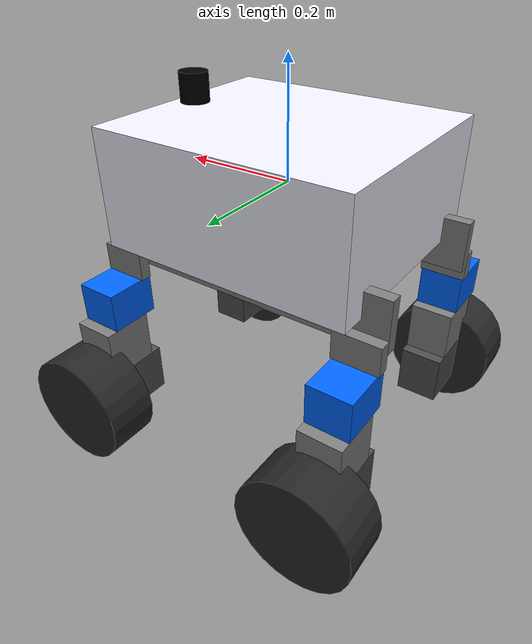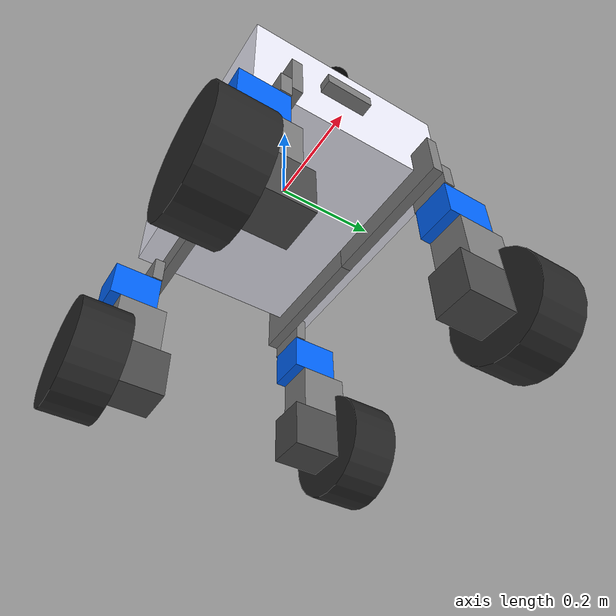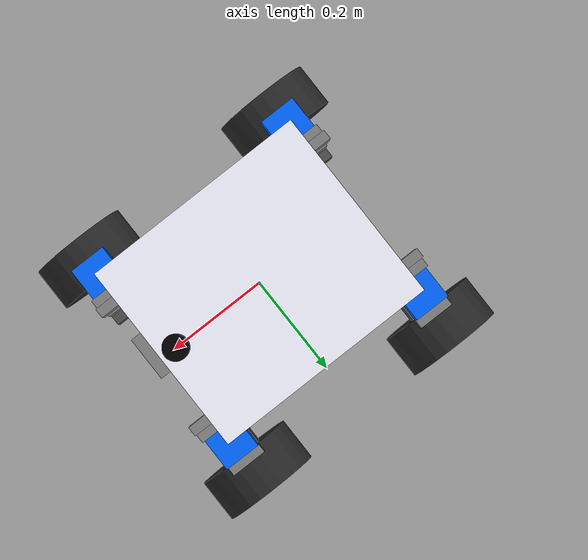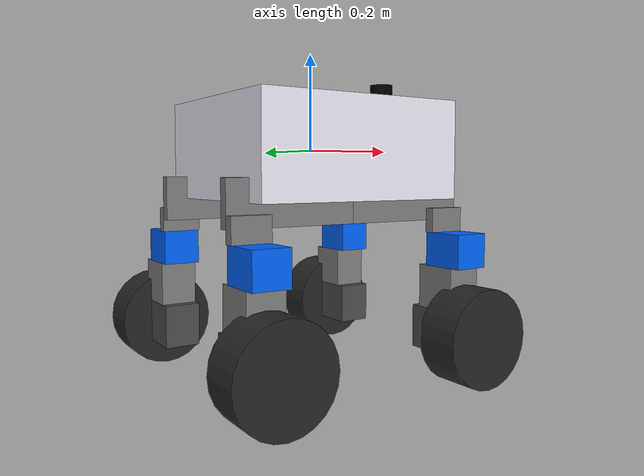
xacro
<?xml version="1.0"?>
<robot name="pf1" xmlns:xacro="http://ros.org/wiki/xacro">

    <!-- define color-->
  <material name="base_link">
    <color rgba="0.95 0.95 1.0 1.0"/>
  </material>
  <material name="lidar">
    <color rgba="0.0 0.0 0.0 1.0"/>
  </material>
  <material name="camera_aluminum">
    <color rgba="0.5 0.5 0.5 1.0"/>
  </material>
  <material name="frame">
    <color rgba="0.5 0.5 0.5 1.0"/>
  </material>
  <material name="gear">
    <color rgba="0.0 0.4 1.0 1.0"/>
  </material>
  <material name="motor">
    <color rgba="0.3 0.3 0.3 1.0"/>
  </material>
  <material name="wheel">
    <color rgba="0.15 0.15 0.15 1.0"/>
  </material>

    <!-- base_footprint-->

    <!-- base_link -->
  <link name="base_link">
    <inertial>
      <origin xyz="0 0 0" rpy="0 0 0"/>
      <mass value="50.0"/>
      <inertia ixx="1.0" ixy="0.0" ixz="0.0" iyy="1.0" iyz="0.0" izz="1.0"/>
    </inertial>
    <visual>
      <geometry>
        <box size="0.45 0.39 0.2"/>
      </geometry>
      <origin xyz="0 0 0" rpy="0 0 0"/>
      <material name="base_link"/>
    </visual>
    <collision>
      <geometry>
        <box size="0.45 0.39 0.2"/>
      </geometry>
      <origin xyz="0 0 0" rpy="0 0 0"/>
      <material name="base_link"/>
    </collision>
  </link>
  <gazebo reference="body_link">
    <material>Gazebo/White</material>
  </gazebo>

    <!-- imu_link -->
  <joint name="imu_link_to_base_link" type="fixed">
    <parent link="base_link"/>
    <child link="imu_link"/>
    <origin xyz="-0 0 0" rpy="0 0 0"/>
  </joint>
  <link name="imu_link">
    <visual>
      <origin xyz="0 0 0.0" rpy="0 0 0"/>
      <geometry>
        <cylinder length="0.01" radius="0.005"/>
      </geometry>
      <material name="lidar"/>
    </visual>
    <collision>
      <origin xyz="0 0 0.0" rpy="0 0 0"/>
      <geometry>
        <cylinder length="0.01" radius="0.005"/>
      </geometry>
      <material name="lidar"/>
    </collision>
  </link>
  <gazebo reference="imu_link">
    <material>Gazebo/Blue</material>
    <gravity>true</gravity>
    <sensor name="imu_sensor" type="imu">
      <always_on>true</always_on>
      <update_rate>100</update_rate>
      <visualize>true</visualize>
      <topic>data</topic>
      <plugin filename="libgazebo_ros_imu_sensor.so" name="imu_plugin">
        <topicName>imu/data</topicName>
        <bodyName>imu_link</bodyName>
        <updateRateHZ>10.0</updateRateHZ>
        <gaussianNoise>0.0</gaussianNoise>
        <xyzOffset>0 0 0</xyzOffset>
        <rpyOffset>0 0 0</rpyOffset>
        <frameName>imu_link</frameName>
      </plugin>
      <pose>0 0 0 0 0 0</pose>
    </sensor>
  </gazebo>

    <!-- base_sensor -->
  <joint name="base_link_to_base_sensor" type="fixed">
    <parent link="base_link"/>
    <child link="base_sensor"/>
    <origin xyz="-0 0 0" rpy="0 0 0"/>
  </joint>
  <link name="base_sensor">
    <visual>
      <origin xyz="0 0 0.0" rpy="0 0 0"/>
      <geometry>
        <cylinder length="0.01" radius="0.005"/>
      </geometry>
      <material name="lidar"/>
    </visual>
    <collision>
      <origin xyz="0 0 0.0" rpy="0 0 0"/>
      <geometry>
        <cylinder length="0.01" radius="0.005"/>
      </geometry>
      <material name="lidar"/>
    </collision>
  </link>
  <gazebo reference="base_link_to_base_sensor">
    <material>Gazebo/Grey</material>
  </gazebo>

    <!-- realsense -->

  <!-- set property -->
   <xacro:property name="M_PI" value="3.1415926535897931" />
   <xacro:property name="d435_cam_width" value="0.090"/>
   <xacro:property name="d435_cam_height" value="0.025"/>
   <xacro:property name="d435_cam_depth" value="0.02505"/>
   <xacro:property name="d435_cam_mount_from_center_offset" value="0.0149"/>
   <xacro:property name="d435_cam_depth_px" value="${d435_cam_mount_from_center_offset}"/>
   <xacro:property name="d435_cam_depth_py" value="0.0175"/>
   <xacro:property name="d435_cam_depth_pz" value="${d435_cam_height/2}"/>
   <xacro:property name="deg_to_rad" value="0.01745329251994329577" />

  <!-- camera body, with origin at bottom screw mount -->

    <joint name="camera_joint" type="fixed">
      <origin xyz="0.225 0 0" rpy="0 0 0" />
      <parent link="base_sensor" />
      <child link="camera_bottom_screw_frame" />
    </joint>

    <link name="camera_bottom_screw_frame"/>

    <joint name="camera_link_joint" type="fixed">
      <origin xyz="0.0125 0 0" rpy="0 0 0"/>
      <parent link="camera_bottom_screw_frame"/>
      <child link="camera_link" />
    </joint>

    <link name="camera_link">
      <visual>
        <origin xyz="0 ${-d435_cam_depth_py} 0" rpy="${M_PI/2} 0 ${M_PI/2}"/>
        <geometry>
          <box size="${d435_cam_width} ${d435_cam_height} ${d435_cam_depth}" />
        </geometry>
        <material name="camera_aluminum"/>
      </visual>
      <collision>
        <origin xyz="0 ${-d435_cam_depth_py} 0" rpy="0 0 0"/>
        <geometry>
          <box size="${d435_cam_depth} ${d435_cam_width} ${d435_cam_height}"/>
        </geometry>
      </collision>
      <inertial>
        <mass value="0.564" />
        <origin xyz="0 0 0" />
        <inertia ixx="0.003881243" ixy="0.0" ixz="0.0" iyy="0.000498940" iyz="0.0" izz="0.003879257" />
      </inertial>
    </link>
    <gazebo reference="camera_link">
      <material>Gazebo/Black</material>
      <self_collide>0</self_collide>
      <enable_wind>0</enable_wind>
      <kinematic>0</kinematic>
      <gravity>1</gravity>
      <mu2>1</mu2>
      <fdir1>0 0 0</fdir1>
      <kp>1e+13</kp>
      <kd>1</kd>
      <sensor name="cameracolor" type="camera">
        <camera name="camera">
          <horizontal_fov>${69.4*deg_to_rad}</horizontal_fov>
          <image>
            <width>640</width>
            <height>480</height>
            <format>RGB_INT8</format>
          </image>
          <clip>
            <near>0.1</near>
            <far>100</far>
          </clip>
          <noise>
            <type>gaussian</type>
            <mean>0.0</mean>
            <stddev>0.007</stddev>
          </noise>
        </camera>
        <always_on>1</always_on>
        <update_rate>30</update_rate>
        <visualize>1</visualize>
      </sensor>

      <sensor name="cameraired1" type="camera">
        <camera name="camera">
          <horizontal_fov>${85.2*deg_to_rad}</horizontal_fov>
          <image>
            <width>1280</width>
            <height>720</height>
            <format>L_INT8</format>
          </image>
          <clip>
            <near>0.1</near>
            <far>100</far>
          </clip>
          <noise>
            <type>gaussian</type>
            <mean>0.0</mean>
            <stddev>0.05</stddev>
          </noise>
        </camera>
        <always_on>1</always_on>
        <update_rate>90</update_rate>
        <visualize>0</visualize>
      </sensor>

      <sensor name="cameraired2" type="camera">
        <camera name="camera">
          <horizontal_fov>${85.2*deg_to_rad}</horizontal_fov>
          <image>
            <width>1280</width>
            <height>720</height>
            <format>L_INT8</format>
          </image>
          <clip>
            <near>0.1</near>
            <far>100</far>
          </clip>
          <noise>
            <type>gaussian</type>
            <mean>0.0</mean>
            <stddev>0.05</stddev>
          </noise>
        </camera>
        <always_on>1</always_on>
        <update_rate>90</update_rate>
        <visualize>0</visualize>
      </sensor>

      <sensor name="cameradepth" type="depth">
        <camera name="camera">
          <horizontal_fov>${85.2*deg_to_rad}</horizontal_fov>
          <image>
            <width>1280</width>
            <height>720</height>
          </image>
          <clip>
            <near>0.1</near>
            <far>100</far>
          </clip>
          <noise>
            <type>gaussian</type>
            <mean>0.0</mean>
            <stddev>0.100</stddev>
          </noise>
        </camera>
        <always_on>1</always_on>
        <update_rate>90</update_rate>
        <visualize>0</visualize>
      </sensor>
    </gazebo>
      <gazebo>
      <plugin name="camera" filename="librealsense_gazebo_plugin.so">
        <prefix>camera</prefix>
        <depthUpdateRate>30.0</depthUpdateRate>
        <colorUpdateRate>30.0</colorUpdateRate>
        <infraredUpdateRate>30.0</infraredUpdateRate>
        <depthTopicName>depth/image_raw</depthTopicName>
        <depthCameraInfoTopicName>depth/camera_info</depthCameraInfoTopicName>
        <colorTopicName>color/image_raw</colorTopicName>
        <colorCameraInfoTopicName>color/camera_info</colorCameraInfoTopicName>
        <infrared1TopicName>infra1/image_raw</infrared1TopicName>
        <infrared1CameraInfoTopicName>infra1/camera_info</infrared1CameraInfoTopicName>
        <infrared2TopicName>infra2/image_raw</infrared2TopicName>
        <infrared2CameraInfoTopicName>infra2/camera_info</infrared2CameraInfoTopicName>
        <colorOpticalframeName>color_optical_frame</colorOpticalframeName>
        <depthOpticalframeName>depth_optical_frame</depthOpticalframeName>
        <infrared1OpticalframeName>infrared1_optical_frame</infrared1OpticalframeName>
        <infrared2OpticalframeName>infrared2_optical_frame</infrared2OpticalframeName>
        <rangeMinDepth>0.2</rangeMinDepth>
        <rangeMaxDepth>10.0</rangeMaxDepth>
        <pointCloud>true</pointCloud>
        <pointCloudTopicName>depth/color/points</pointCloudTopicName>
        <pointCloudCutoff>0.25</pointCloudCutoff>
        <pointCloudCutoffMax>9.0</pointCloudCutoffMax>
      </plugin>
    </gazebo>

    <!-- camera depth joints and links -->
    <joint name="camera_depth_joint" type="fixed">
      <origin xyz="0 0 0" rpy="0 0 0"/>
      <parent link="camera_link"/>
      <child link="camera_depth_frame" />
    </joint>

    <link name="camera_depth_frame"/>

    <joint name="camera_depth_optical_joint" type="fixed">
      <origin xyz="0 0 0" rpy="${-M_PI/2} 0 ${-M_PI/2}" />
      <parent link="camera_depth_frame" />
      <child link="camera_depth_optical_frame" />
    </joint>

    <link name="camera_depth_optical_frame"/>

    <!-- camera left IR joints and links -->
    <joint name="camera_left_ir_joint" type="fixed">
      <origin xyz="0 0 0" rpy="0 0 0" />
      <parent link="camera_depth_frame" />
      <child link="camera_left_ir_frame" />
    </joint>

    <link name="camera_left_ir_frame"/>

    <joint name="camera_left_ir_optical_joint" type="fixed">
      <origin xyz="0 0 0" rpy="${-M_PI/2} 0 ${-M_PI/2}" />
      <parent link="camera_left_ir_frame" />
      <child link="camera_left_ir_optical_frame" />
    </joint>

    <link name="camera_left_ir_optical_frame"/>

    <!-- camera right IR joints and links -->
    <joint name="camera_right_ir_joint" type="fixed">
      <origin xyz="0 -0.050 0" rpy="0 0 0" />
      <parent link="camera_depth_frame" />
      <child link="camera_right_ir_frame" />
    </joint>

    <link name="camera_right_ir_frame"/>

    <joint name="camera_right_ir_optical_joint" type="fixed">
      <origin xyz="0 0 0" rpy="${-M_PI/2} 0 ${-M_PI/2}" />
      <parent link="camera_right_ir_frame" />
      <child link="camera_right_ir_optical_frame" />
    </joint>

    <link name="camera_right_ir_optical_frame"/>

    <!-- camera color joints and links -->
    <joint name="camera_color_joint" type="fixed">
      <origin xyz="0 0.015 0" rpy="0 0 0" />
      <parent link="camera_depth_frame" />
      <child link="camera_color_frame" />
    </joint>

    <link name="camera_color_frame"/>

    <joint name="camera_color_optical_joint" type="fixed">
      <origin xyz="0 0 0" rpy="${-M_PI/2} 0 ${-M_PI/2}" />
      <parent link="camera_color_frame" />
      <child link="camera_color_optical_frame" />
    </joint>

    <link name="camera_color_optical_frame"/>

    <!--end of realsense setup-->

    <!-- front_lidar -->
  <joint name="front_lidar_to_base_sensor" type="fixed">
    <parent link="base_sensor"/>
    <child link="front_lidar"/>
    <!-- side type (piezo) -->
    <!-- front  type (k-lab) -->
    <origin xyz="0.190 0 0.125" rpy="0 0 0"/>
  </joint>
  <link name="front_lidar">
    <visual>
      <origin xyz="0 0 0.0" rpy="0 0 0"/>
      <geometry>
        <cylinder length="0.05" radius="0.025"/>
      </geometry>
      <material name="lidar"/>
    </visual>
    <collision>
      <origin xyz="0 0 0.0" rpy="0 0 0"/>
      <geometry>
        <cylinder length="0.05" radius="0.025"/>
      </geometry>
      <material name="lidar"/>
    </collision>
  </link>
  <gazebo reference="front_lidar">
    <material>Gazebo/Grey</material>
    <sensor type="ray" name="$front_lidar_sensor">
      <pose>0 0 0 0 0 0</pose>
      <visualize>true</visualize>
      <update_rate>10</update_rate>
      <ray>
        <scan>
          <horizontal>
            <samples>400</samples>
            <resolution>1</resolution>
            <min_angle>${radians(-90)}</min_angle>
            <max_angle>${radians(90)}</max_angle>
          </horizontal>
        </scan>
        <range>
          <min>0.10</min>
          <max>20.0</max>
          <resolution>0.01</resolution>
        </range>
        <noise>
          <type>gaussian</type>
          <mean>0.0</mean>
          <stddev>0.01</stddev>
        </noise>
      </ray>
      <plugin name="gazebo_ros_lidar_controller" filename="libgazebo_ros_laser.so">
        <topicName>scan</topicName>
        <frameName>front_lidar</frameName>
      </plugin>
    </sensor>
  </gazebo>

    <!-- rear_lidar -->

    <!-- leg_fl -->
  <joint name="frame1_fl_to_base_link" type="fixed">
    <parent link="base_link"/>
    <child  link="frame1_fl"/>
    <origin xyz="0 0.14 -0.1" rpy="0 0 0"/>
  </joint>
  <link name="frame1_fl">
    <visual>
      <geometry>
        <box size="0.27 0.02 0.09"/>
      </geometry>
      <origin xyz="0.135 0 0" rpy="0 0 0"/>
      <material name="frame"/>
    </visual>
    <collision>
      <geometry>
        <box size="0.27 0.02 0.09"/>
      </geometry>
      <origin xyz="0.135 0 0" rpy="0 0 0"/>
      <material name="frame"/>
    </collision>
  </link>
  <gazebo reference="frame1_fl">
    <material>Gazebo/Grey</material>
  </gazebo>

  <joint name="frame2_fl_to_frame1_fl" type="fixed">
    <parent link="frame1_fl"/>
    <child  link="frame2_fl"/>
    <origin xyz="0.23 0.02 -0.045" rpy="0 0 0"/>
  </joint>
  <link name="frame2_fl">
    <visual>
      <geometry>
        <box size="0.08 0.02 0.05"/>
      </geometry>
      <origin xyz="0 0 0" rpy="0 0 0"/>
      <material name="frame"/>
    </visual>
    <collision>
      <geometry>
        <box size="0.08 0.02 0.05"/>
      </geometry>
      <origin xyz="0 0 0" rpy="0 0 0"/>
      <material name="frame"/>
    </collision>
  </link>
  <gazebo reference="frame2_fl">
    <material>Gazebo/Grey</material>
  </gazebo>

  <joint name="gear_fl_to_frame2_fl" type="fixed">
    <parent link="frame2_fl"/>
    <child  link="gear_fl"/>
    <origin xyz="0 0.035 -0.06" rpy="0 0 0"/>
  </joint>
  <link name="gear_fl">
    <visual>
      <geometry>
        <box size="0.075 0.09 0.07"/>
      </geometry>
      <origin xyz="0 0 0" rpy="0 0 0"/>
      <material name="gear"/>
    </visual>
    <collision>
      <geometry>
        <box size="0.075 0.09 0.07"/>
      </geometry>
      <origin xyz="0 0 0" rpy="0 0 0"/>
      <material name="gear"/>
    </collision>
    <inertial>
      <origin xyz="0 0 0" rpy="0 0 0"/>
      <mass value="1.0"/>
      <inertia ixx="1.0" ixy="0.0" ixz="0.0" iyy="1.0" iyz="0.0" izz="1.0"/>
    </inertial>
  </link>
  <gazebo reference="gear_fl">
    <material>Gazebo/Blue</material>
  </gazebo>

  <joint name="frame3_fl_to_gear_fl" type="revolute">
    <parent link="gear_fl"/>
    <child  link="frame3_fl"/>
    <axis xyz="0 0 1"/>
    <origin xyz="0 0.02 -0.08" rpy="0 0 0"/>
    <limit lower="-3.1415" upper="3.1415" effort="30" velocity="10"/>
    <dybamics damping="10000.0" friction="10000.0" />
  </joint>
  <transmission name="$frame3_fl_to_gear_fl_trans">
    <type>transmission_interface/SimpleTransmission</type>
    <joint name="frame3_fl_to_gear_fl">
        <hardwareInterface>hardware_interface/VelocityJointInterface</hardwareInterface>
    </joint>
    <actuator name="frame3_fl_to_gear_fl_motor">
      <hardwareInterface>hardware_interface/VelocityJointInterface</hardwareInterface>
      <mechanismReduction>1</mechanismReduction>
    </actuator>
  </transmission>

  <gazebo reference="frame3_fl_to_gear_fl">
    <material>Gazebo/Blue</material>
  </gazebo>

  <link name="frame3_fl">
    <visual>
      <geometry>
        <box size="0.075 0.09 0.09"/>
      </geometry>
      <origin xyz="0 0 0" rpy="0 0 0"/>
      <material name="frame"/>
    </visual>
    <collision>
      <geometry>
        <box size="0.075 0.09 0.09"/>
      </geometry>
      <origin xyz="0 0 0" rpy="0 0 0"/>
      <material name="frame"/>
    </collision>
    <inertial>
      <origin xyz="0 0 0" rpy="0 0 0"/>
      <mass value="5.0"/>
      <inertia ixx="1.0" ixy="0.0" ixz="0.0" iyy="1.0" iyz="0.0" izz="1.0"/>
    </inertial>
  </link>
  <gazebo reference="frame3_fl">
    <material>Gazebo/Grey</material>
    <mu1 value="2500" />
    <mu2 value="2500" />
  </gazebo>

  <joint name="motor_fl_to_frame3_fl" type="fixed">
    <parent link="frame3_fl"/>
    <child  link="motor_fl"/>
    <origin xyz="0 -0.02 -0.09" rpy="0 0 0"/>
  </joint>
  <link name="motor_fl">
    <visual>
      <geometry>
        <box size="0.075 0.09 0.09"/>
      </geometry>
      <material name="motor"/>
    </visual>
    <collision>
      <geometry>
        <box size="0.075 0.09 0.09"/>
      </geometry>
      <material name="motor"/>
    </collision>
    <inertial>
      <origin xyz="0 0 0" rpy="0 0 0"/>
      <mass value="5.0"/>
      <inertia ixx="1.0" ixy="0.0" ixz="0.0" iyy="1.0" iyz="0.0" izz="1.0"/>
    </inertial>
  </link>
  <gazebo reference="motor_fl">
    <material>Gazebo/Grey</material>
  </gazebo>

  <joint name="wheel_fl_to_motor_fl" type="continuous">
    <parent link="motor_fl"/>
    <child  link="wheel_fl"/>
    <origin xyz="0 0.09 0" rpy="0 0 0"/>
    <axis xyz="0 1 0"/>
    <limit effort="100" velocity="100"/>
    <dynamics damping="0.1" friction="0.0"/>
  </joint>
  <transmission name="$wheel_fl_trans">
    <type>transmission_interface/SimpleTransmission</type>
    <joint name="wheel_fl_to_motor_fl">
        <hardwareInterface>hardware_interface/VelocityJointInterface</hardwareInterface>
    </joint>
    <actuator name="wheel_fl_motor">
      <hardwareInterface>hardware_interface/VelocityJointInterface</hardwareInterface>
      <mechanismReduction>1</mechanismReduction>
    </actuator>
  </transmission>

  <link name="wheel_fl">
    <visual>
      <geometry>
        <cylinder length="0.09" radius="0.1"/>
      </geometry>
      <origin xyz="0 0 0" rpy="1.57 0 0"/>
      <material name="wheel"/>
    </visual>
    <collision>
      <geometry>
        <cylinder length="0.09" radius="0.1"/>
      </geometry>
      <origin xyz="0 0 0" rpy="1.57 0 0"/>
      <material name="wheel"/>
    </collision>
    <inertial>
      <origin xyz="0 0 0" rpy="0 0 0"/>
      <mass value="10.0"/>
      <inertia ixx="1.0" ixy="0.0" ixz="0.0" iyy="1.0" iyz="0.0" izz="1.0"/>
    </inertial>
  </link>
  <gazebo reference="wheel_fl">
    <material>Gazebo/Black</material>
    <mu1 value="200.0" />
    <mu2 value="100.0" />
    <kp value="10000000.0" />
    <kd value="1.0" />
  </gazebo>

      <!-- leg_bl : mirror leg_fl to the y axis -->
  <joint name="frame1_bl_to_base_link" type="fixed">
    <parent link="base_link"/>
    <child  link="frame1_bl"/>
    <origin xyz="0 0.14 -0.1" rpy="0 0 0"/>
  </joint>
  <link name="frame1_bl">
    <visual>
      <geometry>
        <box size="0.27 0.02 0.09"/>
      </geometry>
      <origin xyz="-0.135 0 0" rpy="0 0 0"/>
      <material name="frame"/>
    </visual>
    <collision>
      <geometry>
        <box size="0.27 0.02 0.09"/>
      </geometry>
      <origin xyz="-0.135 0 0" rpy="0 0 0"/>
      <material name="frame"/>
    </collision>
  </link>
  <gazebo reference="frame1_bl">
    <material>Gazebo/Grey</material>
  </gazebo>

  <joint name="frame2_bl_to_frame1_bl" type="fixed">
    <parent link="frame1_bl"/>
    <child  link="frame2_bl"/>
    <origin xyz="-0.23 0.02 -0.045" rpy="0 0 0"/>
  </joint>
  <link name="frame2_bl">
    <visual>
      <geometry>
        <box size="0.08 0.02 0.05"/>
      </geometry>
      <origin xyz="0 0 0" rpy="0 0 0"/>
      <material name="frame"/>
    </visual>
    <collision>
      <geometry>
        <box size="0.08 0.02 0.05"/>
      </geometry>
      <origin xyz="0 0 0" rpy="0 0 0"/>
      <material name="frame"/>
    </collision>
  </link>
  <gazebo reference="frame2_bl">
    <material>Gazebo/Grey</material>
  </gazebo>

  <joint name="gear_bl_to_frame2_bl" type="fixed">
    <parent link="frame2_bl"/>
    <child  link="gear_bl"/>
    <origin xyz="0 0.035 -0.06" rpy="0 0 0"/>
  </joint>
  <link name="gear_bl">
    <visual>
      <geometry>
        <box size="0.075 0.09 0.07"/>
      </geometry>
      <origin xyz="0 0 0" rpy="0 0 0"/>
      <material name="gear"/>
    </visual>
    <collision>
      <geometry>
        <box size="0.075 0.09 0.07"/>
      </geometry>
      <origin xyz="0 0 0" rpy="0 0 0"/>
      <material name="gear"/>
    </collision>
    <inertial>
      <origin xyz="0 0 0" rpy="0 0 0"/>
      <mass value="1.0"/>
      <inertia ixx="1.0" ixy="0.0" ixz="0.0" iyy="1.0" iyz="0.0" izz="1.0"/>
    </inertial>
  </link>
  <gazebo reference="gear_bl">
    <material>Gazebo/Blue</material>
  </gazebo>

  <joint name="frame3_bl_to_gear_bl" type="revolute">
    <parent link="gear_bl"/>
    <child  link="frame3_bl"/>
    <axis xyz="0 0 1"/>
    <origin xyz="0 0.02 -0.08" rpy="0 0 0"/>
    <limit lower="-3.1415" upper="3.1415" effort="30" velocity="10"/>
    <dybamics damping="10000.0" friction="10000.0" />
  </joint>
  <transmission name="$frame3_bl_to_gear_bl_trans">
    <type>transmission_interface/SimpleTransmission</type>
    <joint name="frame3_bl_to_gear_bl">
        <hardwareInterface>hardware_interface/VelocityJointInterface</hardwareInterface>
    </joint>
    <actuator name="frame3_bl_to_gear_bl_motor">
      <hardwareInterface>hardware_interface/VelocityJointInterface</hardwareInterface>
      <mechanismReduction>1</mechanismReduction>
    </actuator>
  </transmission>

  <gazebo reference="frame3_bl_to_gear_bl">
    <material>Gazebo/Blue</material>
  </gazebo>

  <link name="frame3_bl">
    <visual>
      <geometry>
        <box size="0.075 0.09 0.09"/>
      </geometry>
      <origin xyz="0 0 0" rpy="0 0 0"/>
      <material name="frame"/>
    </visual>
    <collision>
      <geometry>
        <box size="0.075 0.09 0.09"/>
      </geometry>
      <origin xyz="0 0 0" rpy="0 0 0"/>
      <material name="frame"/>
    </collision>
    <inertial>
      <origin xyz="0 0 0" rpy="0 0 0"/>
      <mass value="5.0"/>
      <inertia ixx="1.0" ixy="0.0" ixz="0.0" iyy="1.0" iyz="0.0" izz="1.0"/>
    </inertial>
  </link>
  <gazebo reference="frame3_bl">
    <material>Gazebo/Grey</material>
    <mu1 value="2500" />
    <mu2 value="2500" />
  </gazebo>

  <joint name="motor_bl_to_frame3_bl" type="fixed">
    <parent link="frame3_bl"/>
    <child  link="motor_bl"/>
    <origin xyz="0 -0.02 -0.09" rpy="0 0 0"/>
  </joint>
  <link name="motor_bl">
    <visual>
      <geometry>
        <box size="0.075 0.09 0.09"/>
      </geometry>
      <material name="motor"/>
    </visual>
    <collision>
      <geometry>
        <box size="0.075 0.09 0.09"/>
      </geometry>
      <material name="motor"/>
    </collision>
    <inertial>
      <origin xyz="0 0 0" rpy="0 0 0"/>
      <mass value="5.0"/>
      <inertia ixx="1.0" ixy="0.0" ixz="0.0" iyy="1.0" iyz="0.0" izz="1.0"/>
    </inertial>
  </link>
  <gazebo reference="motor_bl">
    <material>Gazebo/Grey</material>
  </gazebo>

  <joint name="wheel_bl_to_motor_bl" type="continuous">
    <parent link="motor_bl"/>
    <child  link="wheel_bl"/>
    <origin xyz="0 0.09 0" rpy="0 0 0"/>
    <axis xyz="0 1 0"/>
    <limit effort="100" velocity="100"/>
    <dynamics damping="0.1" friction="0.0"/>
  </joint>
  <transmission name="$wheel_bl_trans">
    <type>transmission_interface/SimpleTransmission</type>
    <joint name="wheel_bl_to_motor_bl">
        <hardwareInterface>hardware_interface/VelocityJointInterface</hardwareInterface>
    </joint>
    <actuator name="wheel_bl_motor">
      <hardwareInterface>hardware_interface/VelocityJointInterface</hardwareInterface>
      <mechanismReduction>1</mechanismReduction>
    </actuator>
  </transmission>

  <link name="wheel_bl">
    <visual>
      <geometry>
        <cylinder length="0.09" radius="0.1"/>
      </geometry>
      <origin xyz="0 0 0" rpy="1.57 0 0"/>
      <material name="wheel"/>
    </visual>>
    <collision>
      <geometry>
        <cylinder length="0.09" radius="0.1"/>
      </geometry>
      <origin xyz="0 0 0" rpy="1.57 0 0"/>
      <material name="wheel"/>
    </collision>
    <inertial>
      <origin xyz="0 0 0" rpy="0 0 0"/>
      <mass value="10.0"/>
      <inertia ixx="1.0" ixy="0.0" ixz="0.0" iyy="1.0" iyz="0.0" izz="1.0"/>
    </inertial>
  </link>
  <gazebo reference="wheel_bl">
    <material>Gazebo/Black</material>
    <mu1 value="200.0" />
    <mu2 value="100.0" />
    <kp value="10000000.0" />
    <kd value="1.0" />
  </gazebo>

    <!-- leg_fr -->
  <joint name="frame1_fr_to_base_link" type="fixed">
    <parent link="base_link"/>
    <child  link="frame1_fr"/>
    <origin xyz="0 -0.14 -0.1" rpy="0 0 0"/>
  </joint>
  <link name="frame1_fr">
    <visual>
      <geometry>
        <box size="0.27 0.02 0.09"/>
      </geometry>
      <origin xyz="0.135 0 0" rpy="0 0 0"/>
      <material name="frame"/>
    </visual>
    <collision>
      <geometry>
        <box size="0.27 0.02 0.09"/>
      </geometry>
      <origin xyz="0.135 0 0" rpy="0 0 0"/>
      <material name="frame"/>
    </collision>
  </link>
  <gazebo reference="frame1_fr">
    <material>Gazebo/Grey</material>
  </gazebo>

  <joint name="frame2_fr_to_frame1_fr" type="fixed">
    <parent link="frame1_fr"/>
    <child  link="frame2_fr"/>
    <origin xyz="0.23 -0.02 -0.045" rpy="0 0 0"/>
  </joint>
  <link name="frame2_fr">
    <visual>
      <geometry>
        <box size="0.08 0.02 0.05"/>
      </geometry>
      <origin xyz="0 0 0" rpy="0 0 0"/>
      <material name="frame"/>
    </visual>
    <collision>
      <geometry>
        <box size="0.08 0.02 0.05"/>
      </geometry>
      <origin xyz="0 0 0" rpy="0 0 0"/>
      <material name="frame"/>
    </collision>
  </link>
  <gazebo reference="frame2_fr">
    <material>Gazebo/Grey</material>
  </gazebo>

  <joint name="gear_fr_to_frame2_fr" type="fixed">
    <parent link="frame2_fr"/>
    <child  link="gear_fr"/>
    <origin xyz="0 -0.035 -0.06" rpy="0 0 0"/>
  </joint>
  <link name="gear_fr">
    <visual>
      <geometry>
        <box size="0.075 0.09 0.07"/>
      </geometry>
      <origin xyz="0 0 0" rpy="0 0 0"/>
      <material name="gear"/>
    </visual>
    <collision>
      <geometry>
        <box size="0.075 0.09 0.07"/>
      </geometry>
      <origin xyz="0 0 0" rpy="0 0 0"/>
      <material name="gear"/>
    </collision>
    <inertial>
      <origin xyz="0 0 0" rpy="0 0 0"/>
      <mass value="1.0"/>
      <inertia ixx="1.0" ixy="0.0" ixz="0.0" iyy="1.0" iyz="0.0" izz="1.0"/>
    </inertial>
  </link>
  <gazebo reference="gear_fr">
    <material>Gazebo/Blue</material>
  </gazebo>

  <joint name="frame3_fr_to_gear_fr" type="revolute">
    <parent link="gear_fr"/>
    <child  link="frame3_fr"/>
    <axis xyz="0 0 1"/>
    <origin xyz="0 0.02 -0.08" rpy="0 0 0"/>
    <limit lower="-3.1415" upper="3.1415" effort="30" velocity="10"/>
    <dybamics damping="10000.0" friction="10000.0" />
  </joint>
  <transmission name="$frame3_fr_to_gear_fr_trans">
    <type>transmission_interface/SimpleTransmission</type>
    <joint name="frame3_fr_to_gear_fr">
        <hardwareInterface>hardware_interface/VelocityJointInterface</hardwareInterface>
    </joint>
    <actuator name="frame3_fr_to_gear_fr_motor">
      <hardwareInterface>hardware_interface/VelocityJointInterface</hardwareInterface>
      <mechanismReduction>1</mechanismReduction>
    </actuator>
  </transmission>

  <gazebo reference="frame3_fr_to_gear_fr">
    <material>Gazebo/Blue</material>
  </gazebo>

  <link name="frame3_fr">
    <visual>
      <geometry>
        <box size="0.075 0.09 0.09"/>
      </geometry>
      <origin xyz="0 0 0" rpy="0 0 0"/>
      <material name="frame"/>
    </visual>
    <collision>
      <geometry>
        <box size="0.075 0.09 0.09"/>
      </geometry>
      <origin xyz="0 0 0" rpy="0 0 0"/>
      <material name="frame"/>
    </collision>
    <inertial>
      <origin xyz="0 0 0" rpy="0 0 0"/>
      <mass value="5.0"/>
      <inertia ixx="1.0" ixy="0.0" ixz="0.0" iyy="1.0" iyz="0.0" izz="1.0"/>
    </inertial>
  </link>
  <gazebo reference="frame3_fr">
    <material>Gazebo/Grey</material>
    <mu1 value="2500" />
    <mu2 value="2500" />
  </gazebo>

  <joint name="motor_fr_to_frame3_fr" type="fixed">
    <parent link="frame3_fr"/>
    <child  link="motor_fr"/>
    <origin xyz="0 0.02 -0.09" rpy="0 0 0"/>
  </joint>
  <link name="motor_fr">
    <visual>
      <geometry>
        <box size="0.075 0.09 0.09"/>
      </geometry>
      <material name="motor"/>
    </visual>
    <collision>
      <geometry>
        <box size="0.075 0.09 0.09"/>
      </geometry>
      <material name="motor"/>
    </collision>
    <inertial>
      <origin xyz="0 0 0" rpy="0 0 0"/>
      <mass value="5.0"/>
      <inertia ixx="1.0" ixy="0.0" ixz="0.0" iyy="1.0" iyz="0.0" izz="1.0"/>
    </inertial>
  </link>
  <gazebo reference="motor_fr">
    <material>Gazebo/Grey</material>
  </gazebo>

  <joint name="wheel_fr_to_motor_fr" type="continuous">
    <parent link="motor_fr"/>
    <child  link="wheel_fr"/>
    <origin xyz="0 -0.09 0" rpy="0 0 0"/>
    <axis xyz="0 1 0"/>
    <limit effort="100" velocity="100"/>
    <dynamics damping="0.1" friction="0.0"/>
  </joint>
  <transmission name="$wheel_fr_trans">
    <type>transmission_interface/SimpleTransmission</type>
    <joint name="wheel_fr_to_motor_fr">
        <hardwareInterface>hardware_interface/VelocityJointInterface</hardwareInterface>
    </joint>
    <actuator name="wheel_fr_motor">
      <hardwareInterface>hardware_interface/VelocityJointInterface</hardwareInterface>
      <mechanismReduction>1</mechanismReduction>
    </actuator>
  </transmission>

  <link name="wheel_fr">
    <visual>
      <geometry>
        <cylinder length="0.09" radius="0.1"/>
      </geometry>
      <origin xyz="0 0 0" rpy="1.57 0 0"/>
      <material name="wheel"/>
    </visual>
    <collision>
      <geometry>
        <cylinder length="0.09" radius="0.1"/>
      </geometry>
      <origin xyz="0 0 0" rpy="1.57 0 0"/>
      <material name="wheel"/>
    </collision>
    <inertial>
      <origin xyz="0 0 0" rpy="0 0 0"/>
      <mass value="10.0"/>
      <inertia ixx="1.0" ixy="0.0" ixz="0.0" iyy="1.0" iyz="0.0" izz="1.0"/>
    </inertial>
  </link>
  <gazebo reference="wheel_fr">
    <material>Gazebo/Black</material>
    <mu1 value="200.0" />
    <mu2 value="100.0" />
    <kp value="10000000.0" />
    <kd value="1.0" />
  </gazebo>

    <!-- leg_br -->
  <joint name="frame1_br_to_base_link" type="fixed">
    <parent link="base_link"/>
    <child  link="frame1_br"/>
    <origin xyz="0 -0.14 -0.1" rpy="0 0 0"/>
  </joint>
  <link name="frame1_br">
    <visual>
      <geometry>
        <box size="0.27 0.02 0.09"/>
      </geometry>
      <origin xyz="-0.135 0 0" rpy="0 0 0"/>
      <material name="frame"/>
    </visual>
    <collision>
      <geometry>
        <box size="0.27 0.02 0.09"/>
      </geometry>
      <origin xyz="-0.135 0 0" rpy="0 0 0"/>
      <material name="frame"/>
    </collision>
  </link>
  <gazebo reference="frame1_br">
    <material>Gazebo/Grey</material>
  </gazebo>

  <joint name="frame2_br_to_frame1_br" type="fixed">
    <parent link="frame1_br"/>
    <child  link="frame2_br"/>
    <origin xyz="-0.23 -0.02 -0.045" rpy="0 0 0"/>
  </joint>
  <link name="frame2_br">
    <visual>
      <geometry>
        <box size="0.08 0.02 0.05"/>
      </geometry>
      <origin xyz="0 0 0" rpy="0 0 0"/>
      <material name="frame"/>
    </visual>
    <collision>
      <geometry>
        <box size="0.08 0.02 0.05"/>
      </geometry>
      <origin xyz="0 0 0" rpy="0 0 0"/>
      <material name="frame"/>
    </collision>
  </link>
  <gazebo reference="frame2_br">
    <material>Gazebo/Grey</material>
  </gazebo>

  <joint name="gear_br_to_frame2_br" type="fixed">
    <parent link="frame2_br"/>
    <child  link="gear_br"/>
    <origin xyz="0 -0.035 -0.06" rpy="0 0 0"/>
  </joint>
  <link name="gear_br">
    <visual>
      <geometry>
        <box size="0.075 0.09 0.07"/>
      </geometry>
      <origin xyz="0 0 0" rpy="0 0 0"/>
      <material name="gear"/>
    </visual>
    <collision>
      <geometry>
        <box size="0.075 0.09 0.07"/>
      </geometry>
      <origin xyz="0 0 0" rpy="0 0 0"/>
      <material name="gear"/>
    </collision>
    <inertial>
      <origin xyz="0 0 0" rpy="0 0 0"/>
      <mass value="1.0"/>
      <inertia ixx="1.0" ixy="0.0" ixz="0.0" iyy="1.0" iyz="0.0" izz="1.0"/>
    </inertial>
  </link>
  <gazebo reference="gear_br">
    <material>Gazebo/Blue</material>
  </gazebo>

  <joint name="frame3_br_to_gear_br" type="revolute">
    <parent link="gear_br"/>
    <child  link="frame3_br"/>
    <axis xyz="0 0 1"/>
    <origin xyz="0 0.02 -0.08" rpy="0 0 0"/>
    <limit lower="-3.1415" upper="3.1415" effort="30" velocity="10"/>
    <dybamics damping="10000.0" friction="10000.0" />
  </joint>
  <transmission name="$frame3_br_to_gear_br_trans">
    <type>transmission_interface/SimpleTransmission</type>
    <joint name="frame3_br_to_gear_br">
        <hardwareInterface>hardware_interface/VelocityJointInterface</hardwareInterface>
    </joint>
    <actuator name="frame3_br_to_gear_br_motor">
      <hardwareInterface>hardware_interface/VelocityJointInterface</hardwareInterface>
      <mechanismReduction>1</mechanismReduction>
    </actuator>
  </transmission>

  <gazebo reference="frame3_br_to_gear_br">
    <material>Gazebo/Blue</material>
  </gazebo>

  <link name="frame3_br">
    <visual>
      <geometry>
        <box size="0.075 0.09 0.09"/>
      </geometry>
      <origin xyz="0 0 0" rpy="0 0 0"/>
      <material name="frame"/>
    </visual>
    <collision>
      <geometry>
        <box size="0.075 0.09 0.09"/>
      </geometry>
      <origin xyz="0 0 0" rpy="0 0 0"/>
      <material name="frame"/>
    </collision>
    <inertial>
      <origin xyz="0 0 0" rpy="0 0 0"/>
      <mass value="5.0"/>
      <inertia ixx="1.0" ixy="0.0" ixz="0.0" iyy="1.0" iyz="0.0" izz="1.0"/>
    </inertial>
  </link>
  <gazebo reference="frame3_br">
    <material>Gazebo/Green</material>
    <mu1 value="2500" />
    <mu2 value="2500" />
  </gazebo>

  <joint name="motor_br_to_frame3_br" type="fixed">
    <parent link="frame3_br"/>
    <child  link="motor_br"/>
    <origin xyz="0 0.02 -0.09" rpy="0 0 0"/>
  </joint>
  <link name="motor_br">
    <visual>
      <geometry>
        <box size="0.075 0.09 0.09"/>
      </geometry>
      <material name="motor"/>
    </visual>
    <collision>
      <geometry>
        <box size="0.075 0.09 0.09"/>
      </geometry>
      <material name="motor"/>
    </collision>
    <inertial>
      <origin xyz="0 0 0" rpy="0 0 0"/>
      <mass value="5.0"/>
      <inertia ixx="1.0" ixy="0.0" ixz="0.0" iyy="1.0" iyz="0.0" izz="1.0"/>
    </inertial>
  </link>
  <gazebo reference="motor_br">
    <material>Gazebo/Grey</material>
  </gazebo>

  <joint name="wheel_br_to_motor_br" type="continuous">
    <parent link="motor_br"/>
    <child  link="wheel_br"/>
    <origin xyz="0 -0.09 0" rpy="0 0 0"/>
    <axis xyz="0 1 0"/>
    <limit effort="100" velocity="100"/>
    <dynamics damping="0.1" friction="0.0"/>
  </joint>
  <transmission name="$wheel_br_trans">
    <type>transmission_interface/SimpleTransmission</type>
    <joint name="wheel_br_to_motor_br">
        <hardwareInterface>hardware_interface/VelocityJointInterface</hardwareInterface>
    </joint>
    <actuator name="wheel_br_motor">
      <hardwareInterface>hardware_interface/VelocityJointInterface</hardwareInterface>
      <mechanismReduction>1</mechanismReduction>
    </actuator>
  </transmission>

  <link name="wheel_br">
    <visual>
      <geometry>
        <cylinder length="0.09" radius="0.1"/>
      </geometry>
      <origin xyz="0 0 0" rpy="1.57 0 0"/>
      <material name="wheel"/>
    </visual>
    <collision>
      <geometry>
        <cylinder length="0.09" radius="0.1"/>
      </geometry>
      <origin xyz="0 0 0" rpy="1.57 0 0"/>
      <material name="wheel"/>
    </collision>
    <inertial>
      <origin xyz="0 0 0" rpy="0 0 0"/>
      <mass value="10.0"/>
      <inertia ixx="1.0" ixy="0.0" ixz="0.0" iyy="1.0" iyz="0.0" izz="1.0"/>
    </inertial>
  </link>
  <gazebo reference="wheel_br">
    <material>Gazebo/Black</material>
    <mu1 value="200.0" />
    <mu2 value="100.0" />
    <kp value="10000000.0" />
    <kd value="1.0" />
  </gazebo>

  <gazebo>
    <plugin name="gazebo_ros_control" filename="libgazebo_ros_control.so">
      <robotNamespace>/</robotNamespace>
      <robotSimType>gazebo_ros_control/DefaultRobotHWSim</robotSimType>
      <legacyModeNS>true</legacyModeNS>
    </plugin>
  </gazebo>
</robot>
